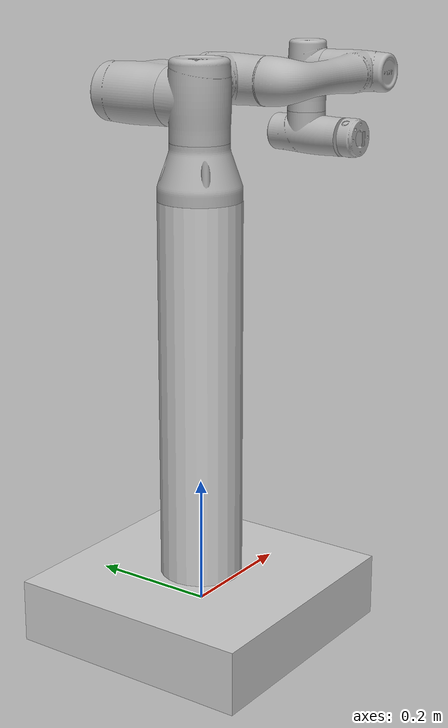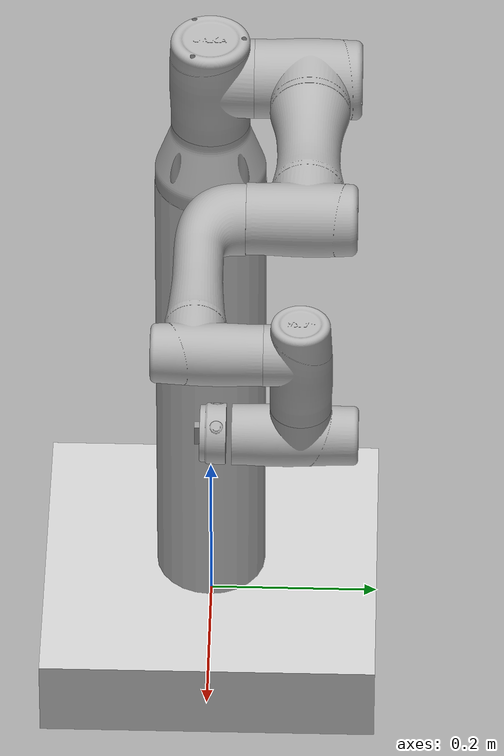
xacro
<?xml version="1.0" encoding="utf-8" ?>

<robot name="jaka_zu3" xmlns:xacro="http://www.ros.org/wiki/xacro">
  <xacro:include filename="gazebo_control.xacro" />
  <xacro:include filename="camera.xacro" />

  <xacro:macro name="cylinder_inertial" params="radius length mass">
    <inertial>
      <mass value="${mass}" />
      <inertia ixx="${mass * (3 * radius * radius + length * length) / 12}" ixy="0.0" ixz="0.0"
        iyy="${mass * (3 * radius * radius + length * length) / 12}" iyz="0.0"
        izz="${0.5 * mass * radius * radius}" />
    </inertial>
  </xacro:macro>

  <xacro:macro name="box_inertial" params="l w h mass ">
    <inertial>
      <mass value="${mass}" />
      <inertia ixx="${mass * (h * h + l * l) / 12}" ixy="0.0" ixz="0.0"
        iyy="${mass * (w * w + l * l) / 12}" iyz="0.0"
        izz="${mass * (w * w + h * h) / 12}" />
    </inertial>
  </xacro:macro>

  <xacro:property name="pi" value="3.1415926" />
  <xacro:property name="base_mass" value="2.0" />  <!-- 0.464  Ixx = 1845.903	Ixy = -26.271	Ixz = -0.086 Iyx = -26.271	Iyy = 833.895	Iyz = -0.041 Izx = -0.086	Izy = -0.041	Izz = 1853.667-->
  <xacro:property name="link1_mass" value="2.0" />  <!--0.897  Ixx = 4871.776	Ixy = 228.402	Ixz = 0.020 Iyx = 228.402	Iyy = 1103.322	Iyz = 0.011 Izx = 0.020	Izy = 0.011	Izz = 4967.703 -->
  <xacro:property name="link2_mass" value="3.42" /> <!--2.325 Ixx = 12015.974	Ixy = 16132.791	Ixz = 0.020 Iyx = 16132.791	Iyy = 57075.725	Iyz = 0.006 Izx = 0.020	Izy = 0.006	Izz = 66888.516 -->
  <xacro:property name="link3_mass" value="3.42" /> <!--1.213 Ixx = 1312.921	Ixy = -0.156	Ixz = 1247.110 Iyx = -0.156	Iyy = 22571.408	Iyz = -0.011 Izx = 1247.110	Izy = -0.011	Izz = 21960.918 -->
  <xacro:property name="link4_mass" value="0.8" /> <!--0.493 Ixx = 2610.725	Ixy = 121.849	Ixz = 0.001 Iyx = 121.849	Iyy = 334.757	Iyz = 0.001 Izx = 0.001	Izy = 0.001	Izz = 2643.893 -->
  <xacro:property name="link5_mass" value="0.8" /> <!--0.551 Ixx = 3611.091	Ixy = 98.862	Ixz = 0.004 Iyx = 98.862	Iyy = 362.851	Iyz = 0.003 Izx = 0.004	Izy = 0.003	Izz = 3642.214 -->
  <xacro:property name="link6_mass" value="0.35" /> <!--0.1 Ixx = 63.206	Ixy = -0.028	Ixz = -0.089 Iyx = -0.028	Iyy = 58.133	Iyz = 0.025 Izx = -0.089	Izy = 0.025	Izz = 62.796 -->

  <link name="plain_link">
    <visual>
      <geometry>
        <box size="0.4 0.4 0.1" />
      </geometry>
      <origin xyz="0 0 0" rpy="0 0 0" />
      <material name="gray">
        <color rgba="0.8 0.8 0.8 1" />
      </material>
    </visual>
    <collision>
      <geometry>
        <box size="0.4 0.4 0.1" />
      </geometry>
      <origin xyz="0 0 0" rpy="0 0 0" />
    </collision>
    <xacro:box_inertial mass="200.0" l="1" w="1" h="0.2" />
  </link>
  <gazebo reference="plain_link">
    <meterial>Gazebo/Grey</meterial>
  </gazebo>

  <joint name="plain2cylinder" type="fixed">
    <parent link="plain_link" />
    <child link="cylinder_link" />
    <origin xyz="0 0 0.35" rpy="0 0 0" />
  </joint>

  <link name="cylinder_link">
    <visual>
      <geometry>
        <cylinder radius="0.065" length="0.6" />
      </geometry>
      <origin xyz="0 0 0" rpy="0 0 0" />
      <material name="gray">
        <color rgba="0.8 0.8 0.8 1" />
      </material>
    </visual>
    <collision>
      <geometry>
        <cylinder radius="0.065" length="0.6" />
      </geometry>
      <origin xyz="0 0 0" rpy="0 0 0" />
    </collision>
    <xacro:cylinder_inertial mass="20.0" radius="0.065" length="0.6" />
  </link>
  <gazebo reference="cylinder_link">
    <meterial>Gazebo/Grey</meterial>
  </gazebo>

  <joint name="cylinder2base" type="fixed">
    <parent link="cylinder_link" />
    <child link="base_link" />
    <origin xyz="0 0 0.3" rpy="0 0 0" />
  </joint>

  <link name="base_link">
    <inertial>
      <origin xyz="0 0 0" rpy="0 0 0" />
      <mass value="0.464" />
      <inertia ixx="0.001845903"	ixy="-0.000026271"	ixz="-0.000000086" iyx="-0.000026271" iyy="0.000833895" iyz="-0.000000041" izx="-0.000000086" izy="-0.000000041"	izz="0.001853667" />
    </inertial>
    <visual>
      <origin xyz="0.0 0.0 0" rpy="0 0 0" />
      <geometry>
        <mesh filename="package://jaka_rviz/meshes/jaka_zu3_meshes/Link_0.STL" />
      </geometry>
      <material name="Grey">
        <color rgba="0.7 0.7 0.7 1.0" />
      </material>
    </visual>
    <collision>
      <origin xyz="0 0 0" rpy="0 0 0" />
      <geometry>
        <mesh filename="package://jaka_rviz/meshes/jaka_zu3_meshes/Link_0.STL" />
      </geometry>
    </collision>
  </link>
  <gazebo reference="base_link">
    <meterial>Gazebo/Grey</meterial>
  </gazebo>

  <joint name="joint_1" type="revolute">
    <origin xyz="0 0 0.15055" rpy="0 0 0" />
    <parent link="base_link" />
    <child link="Link_1" />
    <axis xyz="0 0 1" />
    <limit lower="-6.28" upper="6.28" effort="330" velocity="1.57" />
    <dynamics damping="50" friction="1" />
  </joint>

  <link name="Link_1">
    <inertial>
      <origin xyz="0 0 0" rpy="0 0 0" />
      <mass value="0.897" />
      <inertia ixx="0.004871776" ixy="0.000228402" ixz="0.000000020" iyx="0.000228402" iyy="0.001103322" iyz="0.000000011" izx="0.000000020" izy="0.000000011" izz="0.004967703" />
    </inertial>

    <visual>
      <origin xyz="0 0 0" rpy="0 0 0" />
      <geometry>
        <mesh filename="package://jaka_rviz/meshes/jaka_zu3_meshes/Link_1.STL" />
      </geometry>
      <material name="Grey">
        <color rgba="0.7 0.7 0.7 1.0" />
      </material>
    </visual>
    <collision>
      <origin xyz="0 0 0" rpy="0 0 0" />
      <geometry>
        <mesh filename="package://jaka_rviz/meshes/jaka_zu3_meshes/Link_1.STL" />
      </geometry>
    </collision>
  </link>
  <gazebo reference="Link_1">
    <meterial>Gazebo/Grey</meterial>
  </gazebo>

  <joint name="joint_2" type="revolute">
    <origin xyz="0 0 0" rpy="${pi / 2} 0 0" />
    <parent link="Link_1" />
    <child link="Link_2" />
    <axis xyz="0 0 1" />
    <limit lower="-1.48" upper="3.62" effort="330" velocity="2.16" />
    <dynamics damping="50" friction="1" />
  </joint>

  <link name="Link_2">
    <inertial>
      <origin xyz="0.11439 -6.6036E-07 -0.11395" rpy="0 0 0" />
      <mass value="2.325" />
      <inertia ixx="0.012015974" ixy="0.016132791" ixz="0.000000020" iyx="0.016132791" iyy="0.057075725" iyz="0.000000006" izx="0.000000020" izy="0.000000006" izz="0.066888516" />
    </inertial>
    <visual>
      <origin xyz="0 0 0" rpy="0 0 0" />
      <geometry>
        <mesh filename="package://jaka_rviz/meshes/jaka_zu3_meshes/Link_2.STL" />
      </geometry>
      <material name="Grey">
        <color rgba="0.7 0.7 0.7 1.0" />
      </material>
    </visual>
    <collision>
      <origin xyz="0 0 0" rpy="0 0 0" />
      <geometry>
        <mesh filename="package://jaka_rviz/meshes/jaka_zu3_meshes/Link_2.STL" />
      </geometry>
    </collision>

  </link>
  <gazebo reference="Link_2">
    <meterial>Gazebo/Grey</meterial>
  </gazebo>

  <joint name="joint_3" type="revolute">
    <origin xyz="0.2479 0 0" rpy="0 0 0" />
    <parent link="Link_2" />
    <child link="Link_3" />
    <axis xyz="0 0 1" />
    <limit lower="-3.05" upper="3.05" effort="330" velocity="2.16" />
    <dynamics damping="50" friction="1" />
  </joint>

  <link name="Link_3">
    <inertial>
      <origin xyz="0 0 0" rpy="0 0 0" />
      <mass  value="1.213" />
      <inertia ixx="0.001312921" ixy="-0.000000156"	ixz="0.001247110" iyx="-0.000000156" iyy="0.022571408" iyz="-0.000000011" izx="0.001247110"	izy="-0.000000011" izz="0.021960918" />
    </inertial>

    <visual>
      <origin xyz="0 0 0" rpy="0 0 0" />
      <geometry>
        <mesh filename="package://jaka_rviz/meshes/jaka_zu3_meshes/Link_3.STL" />
      </geometry>
      <material name="Grey">
        <color rgba="0.7 0.7 0.7 1.0" />
      </material>
    </visual>
    <collision>
      <origin xyz="0 0 0" rpy="0 0 0" />
      <geometry>
        <mesh filename="package://jaka_rviz/meshes/jaka_zu3_meshes/Link_3.STL" />
      </geometry>
    </collision>
  </link>
  <gazebo reference="Link_3">
    <meterial>Gazebo/Grey</meterial>
  </gazebo>

  <joint name="joint_4" type="revolute">
    <origin xyz="0.228 0 -0.113" rpy="0 0 0" />
    <parent link="Link_3" />
    <child link="Link_4" />
    <axis xyz="0 0 1" />
    <limit lower="-1.48" upper="3.62" effort="330" velocity="3.83" />
    <dynamics damping="50" friction="1" />
  </joint>

  <link name="Link_4">
    <inertial>
      <origin xyz="6.5068E-08 -0.014052 0.0031614" rpy="0 0 0" />
      <mass value="0.493" />
      <inertia ixx="0.002610725" ixy="0.000121849" ixz="0.000000001" iyx="0.000121849" iyy="0.000334757" iyz="0.000000001" izx="0.000000001" izy="0.000000001" izz="0.002643893" />
    </inertial>

    <visual>
      <origin xyz="0 0 0" rpy="0 0 0" />
      <geometry>
        <mesh filename="package://jaka_rviz/meshes/jaka_zu3_meshes/Link_4.STL" />
      </geometry>
      <material name="Grey">
        <color rgba="0.7 0.7 0.7 1.0" />
      </material>
    </visual>
    <collision>
      <origin xyz="0 0 0" rpy="0 0 0" />
      <geometry>
        <mesh filename="package://jaka_rviz/meshes/jaka_zu3_meshes/Link_4.STL" />
      </geometry>
    </collision>
  </link>
  <gazebo reference="Link_4">
    <meterial>Gazebo/Grey</meterial>
  </gazebo>

  <joint name="joint_5" type="revolute">
    <origin xyz="0 -0.11675 0" rpy="${pi / 2} 0 0" />
    <parent link="Link_4" />
    <child link="Link_5" />
    <axis xyz="0 0 1" />
    <limit lower="-4.71" upper="4.71" effort="330" velocity="3.14" />
    <dynamics damping="50" friction="1" />
  </joint>

  <link name="Link_5">
    <inertial>
      <origin xyz="7.9256E-08 0.0068655 -0.0029086" rpy="0 0 0" />
      <mass value="0.551" />
      <inertia ixx="0.003611091" ixy="0.000098862" ixz="0.000000004" iyx="0.000098862" iyy="0.000362851" iyz="0.000000003" izx="0.000000004" izy="0.000000003" izz="0.003642214" />
    </inertial>

    <visual>
      <origin xyz="0 0 0" rpy="0 0 0" />
      <geometry>
        <mesh filename="package://jaka_rviz/meshes/jaka_zu3_meshes/Link_5.STL" />
      </geometry>
      <material name="Grey">
        <color rgba="0.7 0.7 0.7 1.0" />
      </material>
    </visual>
    <collision>
      <origin xyz="0 0 0" rpy="0 0 0" />
      <geometry>
        <mesh filename="package://jaka_rviz/meshes/jaka_zu3_meshes/Link_5.STL" />
      </geometry>
    </collision>
  </link>
  <gazebo reference="Link_5">
    <meterial>Gazebo/Grey</meterial>
  </gazebo>

  <joint name="joint_6" type="revolute">
    <origin xyz="0 0.105 0" rpy="${-pi / 2} 0 0" />
    <parent link="Link_5" />
    <child link="Link_6" />
    <axis xyz="0 0 -1" />
    <limit lower="${-2 * pi}" upper="${2 * pi}" effort="330" velocity="3.83" />
    <dynamics damping="50" friction="1" />
  </joint>

  <link name="Link_6">
    <inertial>
      <origin xyz="4.9731E-05 -2.965E-05 -0.016372" rpy="0 0 0" />
      <mass value="0.1" />
      <inertia ixx="0.000063206" ixy="-0.000000028"	ixz="-0.000000089" iyx="-0.000000028"	iyy="0.000058133"	iyz="0.000000025" izx="-0.000000089" izy="0.000000025" izz="0.000062796" />
    </inertial>

    <visual>
      <origin xyz="0 0 0" rpy="0 0 0" />
      <geometry>
        <mesh filename="package://jaka_rviz/meshes/jaka_zu3_meshes/Link_6.STL" />
      </geometry>
      <material name="Grey">
        <color rgba="0.7 0.7 0.7 1.0" />
      </material>
    </visual>
    <collision>
      <origin xyz="0 0 0" rpy="0 0 0" />
      <geometry>
        <mesh filename="package://jaka_rviz/meshes/jaka_zu3_meshes/Link_6.STL" />
      </geometry>
    </collision>
  </link>
  <gazebo reference="Link_6">
    <meterial>Gazebo/Grey</meterial>
  </gazebo>

  <!-- camera_link -->
  <link name="camera_link">
    <visual>
      <geometry>
        <box size="0.01 0.025 0.025" />
      </geometry>
      <origin xyz="0.0 0.0 0.0" rpy="0.0 0.0 0.0" />
      <meterial name="black" />
    </visual>
  </link>

  <joint name="camera_joint" type="fixed" >
    <parent link="Link_6" />
    <child link="camera_link" />
    <origin xyz="0 0 0" rpy="0 0 0" />
  </joint>

  <link name="world" />

  <joint name="world_joint" type="fixed">
    <parent link="world" />
    <child link = "plain_link" />
    <origin xyz="0.0 0.0 0.0" rpy="0.0 0.0 0.0" />
  </joint>

  <xacro:macro name="arm_transmission" params="joint_name">

      <transmission name="trans">
          <type>transmission_interface/SimpleTransmission</type>
          <joint name="${joint_name}">
            <hardwareInterface>hardware_interface/EffortJointInterface</hardwareInterface>
          </joint>
          <actuator name="motor">
            <hardwareInterface>hardware_interface/EffortJointInterface</hardwareInterface>
            <mechanicalReduction>1</mechanicalReduction>
          </actuator>
      </transmission>
  </xacro:macro>

    <xacro:arm_transmission joint_name='joint_1' />
    <xacro:arm_transmission joint_name='joint_2' />
    <xacro:arm_transmission joint_name='joint_3' />
    <xacro:arm_transmission joint_name='joint_4' />
    <xacro:arm_transmission joint_name='joint_5' />
    <xacro:arm_transmission joint_name='joint_6' />

</robot>
